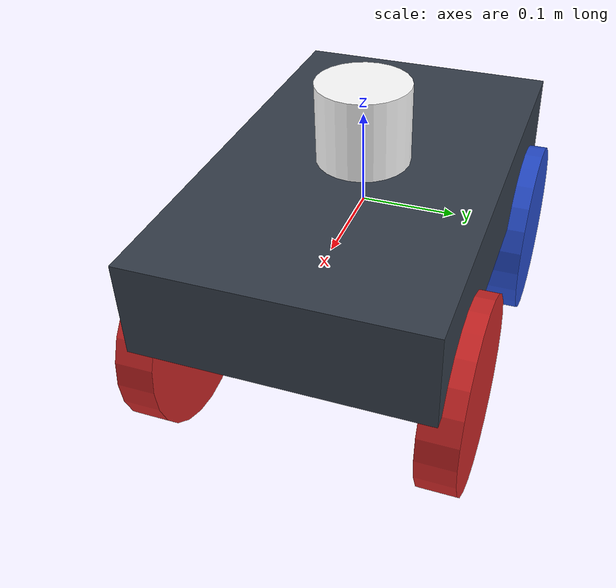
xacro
<?xml version="1.0" ?>
<robot name="m4wr" xmlns:xacro="https://www.ros.org/wiki/xacro" >

  <!-- include the xacro files-->
  <xacro:include filename="$(find uas)/urdf/materials.xacro" />
  <xacro:include filename="$(find uas)/urdf/gazebo.xacro" />
  <xacro:include filename="$(find uas)/urdf/macro.xacro" />

  <!-- Chasis defined here -->
  <link name="link_chassis">
    <pose>0 0 0.1 0 0 0</pose>
    <inertial>
      <mass value="5"/>
      <origin rpy="0 0 0" xyz="0 0 0.1"/>
      <inertia ixx="0.0395416666667" ixy="0" ixz="0" iyy="0.106208333333" iyz="0" izz="0.106208333333"/>
    </inertial>

    <collision name="collision_chassis">
      <geometry>
        <box size="0.5 0.3 0.1"/>
      </geometry>
    </collision>

    <visual>
      <origin rpy="0 0 0" xyz="0 0 0"/>
      <geometry>
        <box size="0.5 0.3 0.1"/>
      </geometry>
      <material name="blue"/>
    </visual>
  </link>

  <!-- Create wheel right -->

  <xacro:link_steer_wheel name="front_link_right_wheel" />
  <xacro:joint_steer_wheel name="front_joint_right_wheel"  child="front_link_right_wheel"  origin_xyz="0.15 0.15 -0.1"  />

  <xacro:link_wheel name="back_link_right_wheel" />
  <xacro:joint_wheel name="back_joint_right_wheel"  child="back_link_right_wheel"  origin_xyz="-0.15 0.15 -0.1"  />

  <!-- Left Wheel link -->

  <xacro:link_steer_wheel name="front_link_left_wheel" />
  <xacro:joint_steer_wheel name="front_joint_left_wheel"   child="front_link_left_wheel"   origin_xyz="0.15 -0.15 -0.1"  />

  <xacro:link_wheel name="back_link_left_wheel" />
  <xacro:joint_wheel name="back_joint_left_wheel"   child="back_link_left_wheel"   origin_xyz="-0.15 -0.15 -0.1"  />

  <link name="sensor_laser">
    <inertial>
      <origin xyz="0 0 0" rpy="0 0 0" />
      <mass value="1" />
      <!-- < RANDOM INERTIA BELOW > -->
      <xacro:cylinder_inertia mass="1" r="0.05" l="0.1" />
    </inertial>

    <visual>
      <origin xyz="0 0 0" rpy="0 0 0" />
      <geometry>
        <cylinder radius="0.05" length="0.1"/>
      </geometry>
      <material name="white" />
    </visual>

    <collision>
      <origin xyz="0.2 0 0.1" rpy="0 0 0"/>
      <geometry>
        <cylinder radius="0.05" length="0.1"/>
      </geometry>
    </collision>
  </link>

  <joint name="joint_sensor_laser" type="fixed">
    <origin xyz="0 0 0.085" rpy="0 0 0"/>
    <parent link="link_chassis"/>
    <child link="sensor_laser"/>
  </joint>

</robot>

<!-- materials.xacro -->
<robot name="m4wr" xmlns:xacro="https://www.ros.org/wiki/xacro" >
  <material name="black">
    <color rgba="0.0 0.0 0.0 1.0"/>
  </material>
  <material name="blue">
    <color rgba="0.203125 0.23828125 0.28515625 1.0"/>
  </material>
  <material name="green">
    <color rgba="0.0 0.8 0.0 1.0"/>
  </material>
  <material name="grey">
    <color rgba="0.2 0.2 0.2 1.0"/>
  </material>
  <material name="orange">
    <color rgba="1.0 0.423529411765 0.0392156862745 1.0"/>
  </material>
  <material name="brown">
    <color rgba="0.870588235294 0.811764705882 0.764705882353 1.0"/>
  </material>
  <material name="red">
    <color rgba="0.80078125 0.12890625 0.1328125 1.0"/>
  </material>
  <material name="white">
    <color rgba="1.0 1.0 1.0 1.0"/>
  </material>
</robot>

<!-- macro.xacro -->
<robot xmlns:xacro="https://www.ros.org/wiki/xacro">
    <xacro:macro name="link_wheel" params="name">
      <link name="${name}">
          <inertial>
            <mass value="0.2"/>
            <origin rpy="0 1.5707 1.5707" xyz="0 0 0"/>
            <inertia ixx="0.000526666666667" ixy="0" ixz="0" iyy="0.000526666666667" iyz="0" izz="0.001"/>
          </inertial>
          <collision name="${name}_collision">
            <origin rpy="0 1.5707 1.5707" xyz="0 0 0"/>
            <geometry>
              <cylinder length="0.04" radius="0.1"/>
            </geometry>
          </collision>
          <visual name="${name}_visual">
            <origin rpy="0 1.5707 1.5707" xyz="0 0 0"/>
            <geometry>
              <cylinder length="0.04" radius="0.1"/>
            </geometry>
          </visual>
      </link>
    </xacro:macro>

    <xacro:macro name="link_steer_wheel" params="name">
      <link name="${name}">
        <inertial>
          <mass value="0.2"/>
          <origin rpy="0 1.5707 1.5707" xyz="0 0 0"/>
          <inertia ixx="0.00052666666" ixy="0" ixz="0" iyy="0.00052666666" iyz="0" izz="0.001"/>
        </inertial>

        <collision name="${name}_collision">
          <origin rpy="0 1.5707 1.5707" xyz="0 0 0" />
          <geometry>
            <cylinder length="0.04" radius="0.1"/>
          </geometry>
        </collision>

        <visual name="${name}_visual">
          <origin rpy="0 1.5707 1.5707" xyz="0 0 0"/>
          <geometry>
            <cylinder length="0.04" radius="0.1"/>
          </geometry>
        </visual>
      </link>
    </xacro:macro>

    <xacro:macro name="joint_wheel" params="name child origin_xyz">
      <joint name="${name}" type="continuous">
        <origin rpy="0 0 0" xyz="${origin_xyz}"/>
        <child link="${child}"/>
        <parent link="link_chassis"/>
        <axis rpy="0 0 0" xyz="0 1 0"/>
        <limit effort="10000" velocity="1000"/>
        <joint_properties damping="1.0" friction="1.0"/>
      </joint>
    </xacro:macro>

    <xacro:macro name="joint_steer_wheel" params="name child origin_xyz">
      <joint name="${name}" type="continuous">
        <origin rpy="0 0 0" xyz="${origin_xyz}"/>
        <child link="${child}" />
        <parent link="link_chassis"/>
        <axis rpy="0 0 0" xyz="0 1 0"/>
        <limit effort="10000" lower="-0.5" upper="0.5" velocity="1000"/>
        <joint_properties damping="1.0" friction="1.0" />
      </joint>
    </xacro:macro>

	<xacro:macro name="cylinder_inertia" params="mass r l">
    		<inertia ixx="${mass*(3*r*r+l*l)/12}" ixy = "0" ixz = "0"
               	 iyy="${mass*(3*r*r+l*l)/12}" iyz = "0" izz="${mass*(r*r)/2}" />
	</xacro:macro>

</robot>
